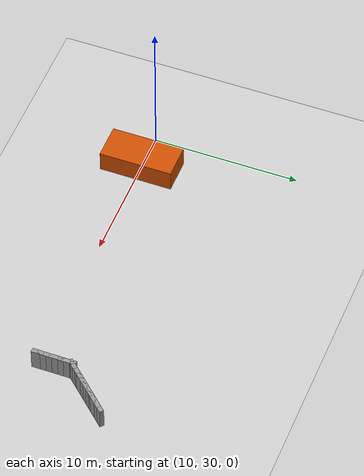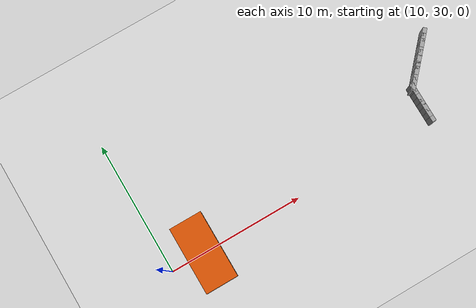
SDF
<sdf version="1.5">
 <world name="img_rect_obs">
  <include><uri>model://sun</uri></include>
  <include><uri>model://ground_plane</uri></include>
  <model name="wallL_0">
   <static>true</static>
   <pose>30.569 32.423 0.750 0 0 -1.571</pose>
   <link name="link">
    <collision name="col"><geometry><box><size>0.600 0.300 1.500</size></box></geometry></collision>
    <visual name="vis">
     <geometry><box><size>0.600 0.300 1.500</size></box></geometry>
     <material><ambient>0.6 0.6 0.6 1</ambient><diffuse>0.6 0.6 0.6 1</diffuse></material>
    </visual>
   </link>
  </model>
  <model name="wallL_1">
   <static>true</static>
   <pose>30.569 32.023 0.750 0 0 -1.571</pose>
   <link name="link">
    <collision name="col"><geometry><box><size>0.600 0.300 1.500</size></box></geometry></collision>
    <visual name="vis">
     <geometry><box><size>0.600 0.300 1.500</size></box></geometry>
     <material><ambient>0.6 0.6 0.6 1</ambient><diffuse>0.6 0.6 0.6 1</diffuse></material>
    </visual>
   </link>
  </model>
  <model name="wallL_2">
   <static>true</static>
   <pose>30.569 31.623 0.750 0 0 -1.571</pose>
   <link name="link">
    <collision name="col"><geometry><box><size>0.600 0.300 1.500</size></box></geometry></collision>
    <visual name="vis">
     <geometry><box><size>0.600 0.300 1.500</size></box></geometry>
     <material><ambient>0.6 0.6 0.6 1</ambient><diffuse>0.6 0.6 0.6 1</diffuse></material>
    </visual>
   </link>
  </model>
  <model name="wallL_3">
   <static>true</static>
   <pose>30.569 31.223 0.750 0 0 -1.571</pose>
   <link name="link">
    <collision name="col"><geometry><box><size>0.600 0.300 1.500</size></box></geometry></collision>
    <visual name="vis">
     <geometry><box><size>0.600 0.300 1.500</size></box></geometry>
     <material><ambient>0.6 0.6 0.6 1</ambient><diffuse>0.6 0.6 0.6 1</diffuse></material>
    </visual>
   </link>
  </model>
  <model name="wallL_4">
   <static>true</static>
   <pose>30.569 30.823 0.750 0 0 -1.571</pose>
   <link name="link">
    <collision name="col"><geometry><box><size>0.600 0.300 1.500</size></box></geometry></collision>
    <visual name="vis">
     <geometry><box><size>0.600 0.300 1.500</size></box></geometry>
     <material><ambient>0.6 0.6 0.6 1</ambient><diffuse>0.6 0.6 0.6 1</diffuse></material>
    </visual>
   </link>
  </model>
  <model name="wallL_5">
   <static>true</static>
   <pose>30.569 30.423 0.750 0 0 -1.571</pose>
   <link name="link">
    <collision name="col"><geometry><box><size>0.600 0.300 1.500</size></box></geometry></collision>
    <visual name="vis">
     <geometry><box><size>0.600 0.300 1.500</size></box></geometry>
     <material><ambient>0.6 0.6 0.6 1</ambient><diffuse>0.6 0.6 0.6 1</diffuse></material>
    </visual>
   </link>
  </model>
  <model name="wallL_6">
   <static>true</static>
   <pose>30.569 30.023 0.750 0 0 -1.571</pose>
   <link name="link">
    <collision name="col"><geometry><box><size>0.600 0.300 1.500</size></box></geometry></collision>
    <visual name="vis">
     <geometry><box><size>0.600 0.300 1.500</size></box></geometry>
     <material><ambient>0.6 0.6 0.6 1</ambient><diffuse>0.6 0.6 0.6 1</diffuse></material>
    </visual>
   </link>
  </model>
  <model name="wallL_181">
   <static>true</static>
   <pose>33.312 35.417 0.750 0 0 -2.312</pose>
   <link name="link">
    <collision name="col"><geometry><box><size>0.600 0.300 1.500</size></box></geometry></collision>
    <visual name="vis">
     <geometry><box><size>0.600 0.300 1.500</size></box></geometry>
     <material><ambient>0.6 0.6 0.6 1</ambient><diffuse>0.6 0.6 0.6 1</diffuse></material>
    </visual>
   </link>
  </model>
  <model name="wallL_182">
   <static>true</static>
   <pose>33.042 35.122 0.750 0 0 -2.312</pose>
   <link name="link">
    <collision name="col"><geometry><box><size>0.600 0.300 1.500</size></box></geometry></collision>
    <visual name="vis">
     <geometry><box><size>0.600 0.300 1.500</size></box></geometry>
     <material><ambient>0.6 0.6 0.6 1</ambient><diffuse>0.6 0.6 0.6 1</diffuse></material>
    </visual>
   </link>
  </model>
  <model name="wallL_183">
   <static>true</static>
   <pose>32.772 34.827 0.750 0 0 -2.312</pose>
   <link name="link">
    <collision name="col"><geometry><box><size>0.600 0.300 1.500</size></box></geometry></collision>
    <visual name="vis">
     <geometry><box><size>0.600 0.300 1.500</size></box></geometry>
     <material><ambient>0.6 0.6 0.6 1</ambient><diffuse>0.6 0.6 0.6 1</diffuse></material>
    </visual>
   </link>
  </model>
  <model name="wallL_184">
   <static>true</static>
   <pose>32.501 34.532 0.750 0 0 -2.312</pose>
   <link name="link">
    <collision name="col"><geometry><box><size>0.600 0.300 1.500</size></box></geometry></collision>
    <visual name="vis">
     <geometry><box><size>0.600 0.300 1.500</size></box></geometry>
     <material><ambient>0.6 0.6 0.6 1</ambient><diffuse>0.6 0.6 0.6 1</diffuse></material>
    </visual>
   </link>
  </model>
  <model name="wallL_185">
   <static>true</static>
   <pose>32.231 34.237 0.750 0 0 -2.312</pose>
   <link name="link">
    <collision name="col"><geometry><box><size>0.600 0.300 1.500</size></box></geometry></collision>
    <visual name="vis">
     <geometry><box><size>0.600 0.300 1.500</size></box></geometry>
     <material><ambient>0.6 0.6 0.6 1</ambient><diffuse>0.6 0.6 0.6 1</diffuse></material>
    </visual>
   </link>
  </model>
  <model name="wallL_186">
   <static>true</static>
   <pose>31.961 33.942 0.750 0 0 -2.312</pose>
   <link name="link">
    <collision name="col"><geometry><box><size>0.600 0.300 1.500</size></box></geometry></collision>
    <visual name="vis">
     <geometry><box><size>0.600 0.300 1.500</size></box></geometry>
     <material><ambient>0.6 0.6 0.6 1</ambient><diffuse>0.6 0.6 0.6 1</diffuse></material>
    </visual>
   </link>
  </model>
  <model name="wallL_187">
   <static>true</static>
   <pose>31.691 33.647 0.750 0 0 -2.312</pose>
   <link name="link">
    <collision name="col"><geometry><box><size>0.600 0.300 1.500</size></box></geometry></collision>
    <visual name="vis">
     <geometry><box><size>0.600 0.300 1.500</size></box></geometry>
     <material><ambient>0.6 0.6 0.6 1</ambient><diffuse>0.6 0.6 0.6 1</diffuse></material>
    </visual>
   </link>
  </model>
  <model name="wallL_188">
   <static>true</static>
   <pose>31.421 33.352 0.750 0 0 -2.312</pose>
   <link name="link">
    <collision name="col"><geometry><box><size>0.600 0.300 1.500</size></box></geometry></collision>
    <visual name="vis">
     <geometry><box><size>0.600 0.300 1.500</size></box></geometry>
     <material><ambient>0.6 0.6 0.6 1</ambient><diffuse>0.6 0.6 0.6 1</diffuse></material>
    </visual>
   </link>
  </model>
  <model name="wallL_189">
   <static>true</static>
   <pose>31.150 33.057 0.750 0 0 -2.312</pose>
   <link name="link">
    <collision name="col"><geometry><box><size>0.600 0.300 1.500</size></box></geometry></collision>
    <visual name="vis">
     <geometry><box><size>0.600 0.300 1.500</size></box></geometry>
     <material><ambient>0.6 0.6 0.6 1</ambient><diffuse>0.6 0.6 0.6 1</diffuse></material>
    </visual>
   </link>
  </model>
  <model name="wallL_190">
   <static>true</static>
   <pose>30.880 32.762 0.750 0 0 -2.312</pose>
   <link name="link">
    <collision name="col"><geometry><box><size>0.600 0.300 1.500</size></box></geometry></collision>
    <visual name="vis">
     <geometry><box><size>0.600 0.300 1.500</size></box></geometry>
     <material><ambient>0.6 0.6 0.6 1</ambient><diffuse>0.6 0.6 0.6 1</diffuse></material>
    </visual>
   </link>
  </model>
  <model name="wallL_191">
   <static>true</static>
   <pose>30.610 32.467 0.750 0 0 -2.312</pose>
   <link name="link">
    <collision name="col"><geometry><box><size>0.600 0.300 1.500</size></box></geometry></collision>
    <visual name="vis">
     <geometry><box><size>0.600 0.300 1.500</size></box></geometry>
     <material><ambient>0.6 0.6 0.6 1</ambient><diffuse>0.6 0.6 0.6 1</diffuse></material>
    </visual>
   </link>
  </model>
  <model name="obs_5">
   <static>true</static>
   <pose>12.500 30.000 0.750 0 0 -1.571</pose>
   <link name="link">
    <collision name="col"><geometry><box><size>5.000 2.400 1.500</size></box></geometry></collision>
    <visual name="vis">
     <geometry><box><size>5.000 2.400 1.500</size></box></geometry>
     <material><ambient>0.8 0.3 0.0 1</ambient><diffuse>0.8 0.3 0.0 1</diffuse></material>
    </visual>
   </link>
  </model>
 </world>
</sdf>
